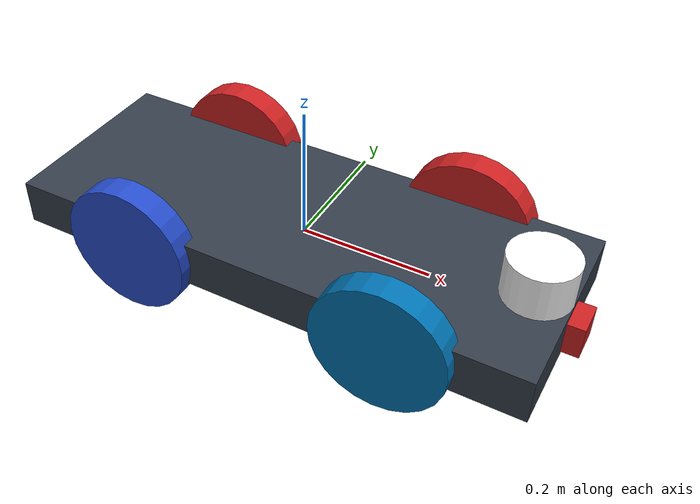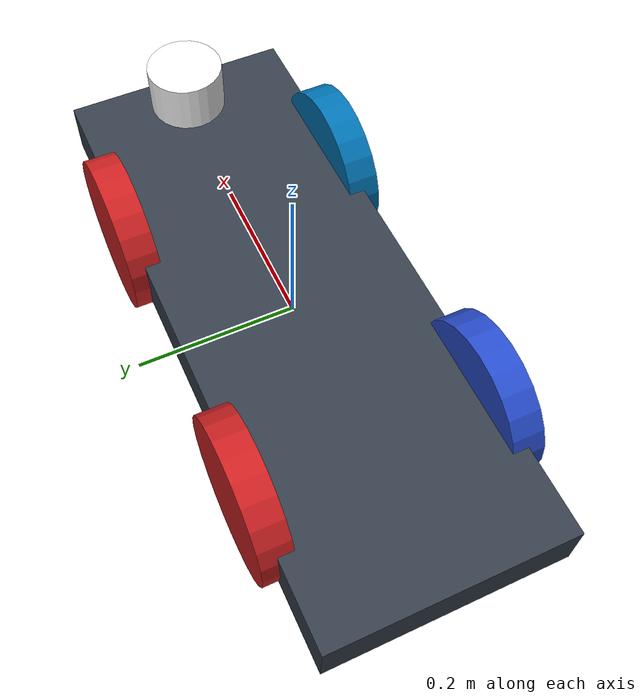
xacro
<?xml version="1.0" ?>

<robot name="m2wr" xmlns:xacro="http://www.ros.org/wiki/xacro" >

 <xacro:property name="camera_size" value="0.05"/>
 <xacro:include filename="$(find spcbot_description)/urdf/spcbot.gazebo"/>

  <material name="black">
    <color rgba="0.0 0.0 0.0 1.0"/>
  </material>
  <material name="blue">
    <color rgba="0.203125 0.23828125 0.28515625 1.0"/>
  </material>
  <material name="green">
    <color rgba="0.0 0.8 0.0 1.0"/>
  </material>
  <material name="grey">
    <color rgba="0.2 0.2 0.2 1.0"/>
  </material>
  <material name="orange">
    <color rgba="1.0 0.423529411765 0.0392156862745 1.0"/>
  </material>
  <material name="brown">
    <color rgba="0.870588235294 0.811764705882 0.764705882353 1.0"/>
  </material>
  <material name="red">
    <color rgba="0.80078125 0.12890625 0.1328125 1.0"/>
  </material>
  <material name="white">
    <color rgba="1.0 1.0 1.0 1.0"/>
  </material>

  <gazebo reference="link_chassis">
    <material>Gazebo/Orange</material>
  </gazebo>
  <gazebo reference="link_left_wheel">
    <material>Gazebo/Blue</material>
  </gazebo>
  <gazebo reference="link_right_wheel">
    <material>Gazebo/Blue</material>
  </gazebo>

  <link name="link_chassis">
    <!-- pose and inertial -->
    <pose>0 0 0.1 0 0 0</pose>

    <inertial>
      <mass value="5"/>
      <origin rpy="0 0 0" xyz="0 0 0.1"/>
      <inertia ixx="0.0395416666667" ixy="0" ixz="0" iyy="0.106208333333" iyz="0" izz="0.106208333333"/>
    </inertial>

    <collision name="collision_chassis">
      <geometry>
        <box size="0.8 0.3 0.07"/>
      </geometry>
    </collision>

    <visual>
      <origin rpy="0 0 0" xyz="0 0 0"/>
      <geometry>
        <box size="0.8 0.3 0.07"/>
      </geometry>
      <material name="blue"/>
    </visual>

    <!-- caster front -->
    </link>

  <!-- Create wheel right -->

  <link name="link_right_wheel">
    <inertial>
      <mass value="0.2"/>
      <origin rpy="0 1.5707 1.5707" xyz="0 0 0"/>
      <inertia ixx="0.00052666666" ixy="0" ixz="0" iyy="0.00052666666" iyz="0" izz="0.001"/>
    </inertial>

    <collision name="link_right_wheel_collision">
      <origin rpy="0 1.5707 1.5707" xyz="0 0 0" />
      <geometry>
        <cylinder length="0.04" radius="0.1"/>
      </geometry>
    </collision>

    <visual name="link_right_wheel_visual">
      <origin rpy="0 1.5707 1.5707" xyz="0 0 0"/>
      <geometry>
        <cylinder length="0.04" radius="0.1"/>
      </geometry>
      <material name="red"/>
    </visual>

  </link>

  <!--   Joint for right wheel  -->
  <joint name="joint_right_wheel" type="continuous">
    <origin rpy="0 0 0" xyz="-0.2 0.15 0"/>
    <child link="link_right_wheel" />
    <parent link="link_chassis"/>
    <axis rpy="0 0 0" xyz="0 1 0"/>
    <limit effort="10000" velocity="1000"/>
    <joint_properties damping="1.0" friction="1.0" />
  </joint>

  <!-- Left Wheel link -->

  <link name="link_left_wheel">
    <inertial>
      <mass value="0.2"/>
      <origin rpy="0 1.5707 1.5707" xyz="0 0 0"/>
      <inertia ixx="0.00052666666" ixy="0" ixz="0" iyy="0.00052666666" iyz="0" izz="0.001"/>
    </inertial>

    <collision name="link_left_wheel_collision">
      <origin rpy="0 1.5707 1.5707" xyz="0 0 0" />
      <geometry>
        <cylinder length="0.04" radius="0.1"/>
      </geometry>
    </collision>

    <visual name="link_left_wheel_visual">
      <origin rpy="0 1.5707 1.5707" xyz="0 0 0"/>
      <geometry>
        <cylinder length="0.04" radius="0.1"/>
      </geometry>
    </visual>

  </link>

  <!--   Joint for right wheel  -->
  <joint name="joint_left_wheel" type="continuous">
    <origin rpy="0 0 0" xyz="-0.2 -0.15 0"/>
    <child link="link_left_wheel" />
    <parent link="link_chassis"/>
    <axis rpy="0 0 0" xyz="0 1 0"/>
    <limit effort="10000" velocity="1000"/>
    <joint_properties damping="1.0" friction="1.0" />
  </joint>

<!-- new -->

<link name="link_right_wheel2">
    <inertial>
      <mass value="0.2"/>
      <origin rpy="0 1.5707 1.5707" xyz="0 0 0"/>
      <inertia ixx="0.00052666666" ixy="0" ixz="0" iyy="0.00052666666" iyz="0" izz="0.001"/>
    </inertial>

    <collision name="link_right_wheel2_collision">
      <origin rpy="0 1.5707 1.5707" xyz="0 0 0" />
      <geometry>
        <cylinder length="0.04" radius="0.1"/>
      </geometry>
    </collision>

    <visual name="link_right_wheel2_visual">
      <origin rpy="0 1.5707 1.5707" xyz="0 0 0"/>
      <geometry>
        <cylinder length="0.04" radius="0.1"/>
      </geometry>
      <material name="red"/>
    </visual>

  </link>

  <!--   Joint for right wheel  -->
  <joint name="joint_right_wheel2" type="continuous">
    <origin rpy="0 0 0" xyz="0.2 0.15 0"/>
    <child link="link_right_wheel2" />
    <parent link="link_chassis"/>
    <axis rpy="0 0 0" xyz="0 1 0"/>
    <limit effort="10000" velocity="1000"/>
    <joint_properties damping="1.0" friction="1.0" />
  </joint>

  <!-- Left Wheel link -->

  <link name="link_left_wheel2">
    <inertial>
      <mass value="0.2"/>
      <origin rpy="0 1.5707 1.5707" xyz="0 0 0"/>
      <inertia ixx="0.00052666666" ixy="0" ixz="0" iyy="0.00052666666" iyz="0" izz="0.001"/>
    </inertial>

    <collision name="link_left_wheel2_collision">
      <origin rpy="0 1.5707 1.5707" xyz="0 0 0" />
      <geometry>
        <cylinder length="0.04" radius="0.1"/>
      </geometry>
    </collision>

    <visual name="link_left_wheel2_visual">
      <origin rpy="0 1.5707 1.5707" xyz="0 0 0"/>
      <geometry>
        <cylinder length="0.04" radius="0.1"/>
      </geometry>
    </visual>

  </link>

  <!--   Joint for right wheel  -->
  <joint name="joint_left_wheel2" type="continuous">
    <origin rpy="0 0 0" xyz="0.2 -0.15 0"/>
    <child link="link_left_wheel2" />
    <parent link="link_chassis"/>
    <axis rpy="0 0 0" xyz="0 1 0"/>
    <limit effort="10000" velocity="1000"/>
    <joint_properties damping="1.0" friction="1.0" />
  </joint>

  <!-- end new -->

  <!-- Camera -->
  <link name="camera_link">
    <collision>
      <origin xyz="0 0 0" rpy="0 0 0"/>
      <geometry>
    <box size="${camera_size} ${camera_size} ${camera_size}"/>
      </geometry>
    </collision>

    <visual>
      <origin xyz="0 0 0" rpy="0 0 0"/>
      <geometry>
    <box size="${camera_size} ${camera_size} ${camera_size}"/>
      </geometry>
      <material name="red"/>
    </visual>

    <inertial>
      <mass value="1e-5" />
      <origin xyz="0 0 0" rpy="0 0 0"/>
      <inertia ixx="1e-6" ixy="0" ixz="0" iyy="1e-6" iyz="0" izz="1e-6" />
    </inertial>
  </link>

<joint name="camera_joint" type="fixed">
    <axis xyz="0 1 0" />
    <origin xyz="0.4 0 0" rpy="0 0 0"/>
    <parent link="link_chassis"/>
    <child link="camera_link"/>
  </joint>

 <link name="sensor_laser">
    <inertial>
      <origin xyz="0 0 0" rpy="0 0 0" />
      <mass value="1" />
      <!-- RANDOM INERTIA BELOW -->
      <inertia ixx="0.02" ixy="0" ixz="0" iyy="0.02" iyz="0" izz="0.02"/>
    </inertial>

    <visual>
      <origin xyz="0 0 0" rpy="0 0 0" />
      <geometry>
        <cylinder radius="0.05" length="0.1"/>
      </geometry>
      <material name="white" />
    </visual>

    <collision>
      <origin xyz="0 0 0" rpy="0 0 0"/>
      <geometry>
        <cylinder radius="0.05" length="0.1"/>
      </geometry>
    </collision>
  </link>

  <joint name="joint_sensor_laser" type="fixed">
    <origin xyz="0.35 0 0.05" rpy="0 0 0"/>
    <parent link="link_chassis"/>
    <child link="sensor_laser"/>
  </joint>

  <gazebo>
  <plugin name="differential_drive_controller" filename="libgazebo_ros_skid_steer_drive.so">
    <alwaysOn>true</alwaysOn>
    <updateRate>100</updateRate>
    <legacyMode>false</legacyMode>
    <leftFrontJoint>joint_right_wheel2</leftFrontJoint>
    <rightFrontJoint>joint_left_wheel2</rightFrontJoint>
    <leftRearJoint>joint_right_wheel</leftRearJoint>
    <rightRearJoint>joint_left_wheel</rightRearJoint>
    <wheelSeparation>0.4</wheelSeparation>
    <wheelDiameter>0.2</wheelDiameter>
    <robotBaseFrame>link_chassis</robotBaseFrame>
    <broadcastTF>1</broadcastTF>
    <torque>20</torque>
    <commandTopic>cmd_vel</commandTopic>
    <odometryTopic>odom</odometryTopic>
    <odometryFrame>odom</odometryFrame>

    <publishWheelTF>flase</publishWheelTF>
    <publishWheelJointState>false</publishWheelJointState>

  </plugin>
</gazebo>

</robot>
